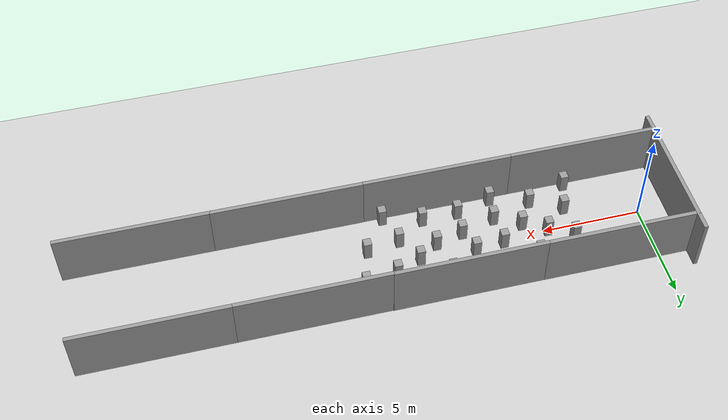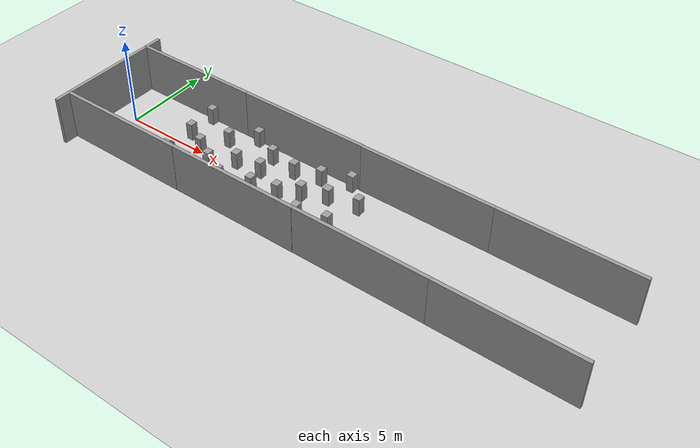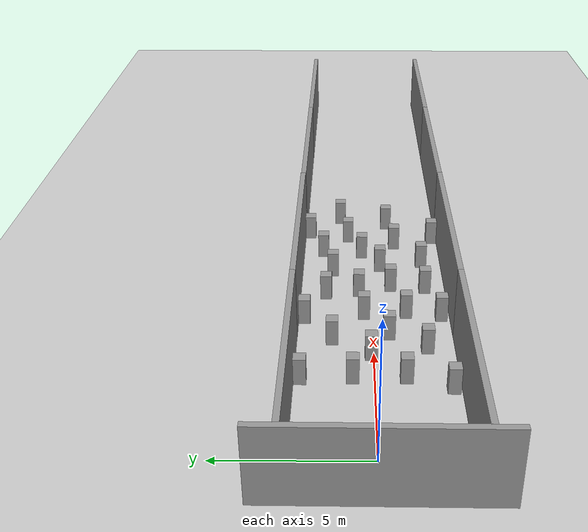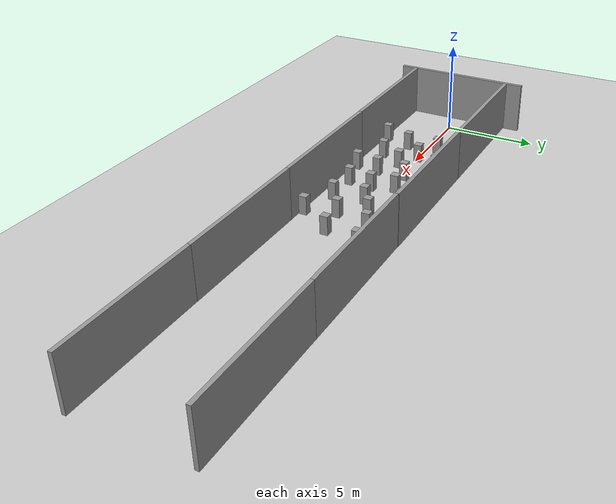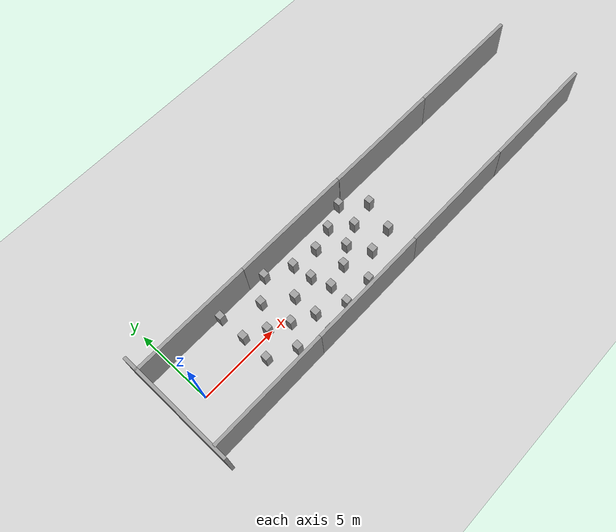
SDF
<sdf version="1.6">
 <world name="default">
  <plugin filename="gz-sim-physics-system" name="gz::sim::systems::Physics"/>
  <plugin filename="gz-sim-sensors-system" name="gz::sim::systems::Sensors">
   <render_engine>ogre2</render_engine>
  </plugin>
  <plugin filename="gz-sim-imu-system" name="gz::sim::systems::Imu"/>
  <plugin filename="gz-sim-scene-broadcaster-system" name="gz::sim::systems::SceneBroadcaster"/>
  <plugin filename="gz-sim-user-commands-system" name="gz::sim::systems::UserCommands"/>
  <light name="sun" type="directional">
   <pose>0 0 10 0 -0 0</pose>
   <diffuse>0.8 0.8 0.8 1</diffuse>
   <specular>0.2 0.2 0.2 1</specular>
   <attenuation>
    <range>1000</range>
    <constant>0.9</constant>
    <linear>0.01</linear>
    <quadratic>0.001</quadratic>
   </attenuation>
   <direction>-0.5 0.1 -0.9</direction>
  </light>
  <model name="ground_plane">
   <static>1</static>
   <link name="link">
    <collision name="collision">
     <geometry><plane><normal>0 0 1</normal><size>100 100</size></plane></geometry>
     <surface><friction><ode><mu>1000</mu><mu2>1000</mu2></ode></friction></surface>
    </collision>
    <visual name="visual">
     <cast_shadows>0</cast_shadows>
     <geometry><plane><normal>0 0 1</normal><size>100 100</size></plane></geometry>
     <material>
      <script><uri>file://media/materials/scripts/gazebo.material</uri><name>Gazebo/Grey</name></script>
     </material>
    </visual>
    <velocity_decay><linear>0</linear><angular>0</angular></velocity_decay>
   </link>
  </model>
  <physics name="default_physics" default="0" type="ode">
   <max_step_size>0.001</max_step_size>
   <real_time_factor>1</real_time_factor>
   <real_time_update_rate>1000</real_time_update_rate>
  </physics>
  <scene><ambient>0.4 0.4 0.4 1</ambient><background>0.7 0.7 0.7 1</background><shadows>1</shadows></scene>
  <spherical_coordinates>
   <surface_model>EARTH_WGS84</surface_model>
   <latitude_deg>0</latitude_deg>
   <longitude_deg>0</longitude_deg>
   <elevation>0</elevation>
   <heading_deg>0</heading_deg>
  </spherical_coordinates>
  <model name="grey_wall">
   <static>1</static>
   <link name="link">
    <pose>0 0 1.4 0 -0 0</pose>
    <collision name="collision"><geometry><box><size>7.5 0.2 2.8</size></box></geometry></collision>
    <visual name="visual">
     <cast_shadows>0</cast_shadows>
     <geometry><box><size>7.5 0.2 2.8</size></box></geometry>
     <material>
      <script>
       <uri>model://grey_wall/materials/scripts</uri>
       <uri>model://grey_wall/materials/textures</uri>
       <name>vrc/grey_wall</name>
      </script>
     </material>
    </visual>
    <velocity_decay><linear>0</linear><angular>0</angular></velocity_decay>
   </link>
   <pose>17.1032 2.73796 0 0 -0 0</pose>
  </model>
  <model name="grey_wall_0">
   <static>1</static>
   <link name="link">
    <pose>0 0 1.4 0 -0 0</pose>
    <collision name="collision"><geometry><box><size>7.5 0.2 2.8</size></box></geometry></collision>
    <visual name="visual">
     <cast_shadows>0</cast_shadows>
     <geometry><box><size>7.5 0.2 2.8</size></box></geometry>
     <material>
      <script>
       <uri>model://grey_wall/materials/scripts</uri>
       <uri>model://grey_wall/materials/textures</uri>
       <name>vrc/grey_wall</name>
      </script>
     </material>
    </visual>
    <velocity_decay><linear>0</linear><angular>0</angular></velocity_decay>
   </link>
   <pose>17.2246 -2.87669 0 0 -0 0</pose>
  </model>
  <model name="grey_wall_1">
   <static>1</static>
   <link name="link">
    <pose>0 0 1.4 0 -0 0</pose>
    <collision name="collision"><geometry><box><size>7.5 0.2 2.8</size></box></geometry></collision>
    <visual name="visual">
     <cast_shadows>0</cast_shadows>
     <geometry><box><size>7.5 0.2 2.8</size></box></geometry>
     <material>
      <script>
       <uri>model://grey_wall/materials/scripts</uri>
       <uri>model://grey_wall/materials/textures</uri>
       <name>vrc/grey_wall</name>
      </script>
     </material>
    </visual>
    <velocity_decay><linear>0</linear><angular>0</angular></velocity_decay>
   </link>
   <pose>-1.54458 -0.02055 0 0 0 -1.57546</pose>
  </model>
  <gravity>0 0 -9.8</gravity>
  <magnetic_field>6e-06 2.3e-05 -4.2e-05</magnetic_field>
  <atmosphere type="adiabatic"/>
  <model name="grey_wall_clone">
   <static>1</static>
   <link name="link">
    <pose>0 0 1.4 0 -0 0</pose>
    <collision name="collision"><geometry><box><size>7.5 0.2 2.8</size></box></geometry></collision>
    <visual name="visual">
     <cast_shadows>0</cast_shadows>
     <geometry><box><size>7.5 0.2 2.8</size></box></geometry>
     <material>
      <script>
       <uri>model://grey_wall/materials/scripts</uri>
       <uri>model://grey_wall/materials/textures</uri>
       <name>vrc/grey_wall</name>
      </script>
     </material>
    </visual>
    <velocity_decay><linear>0</linear><angular>0</angular></velocity_decay>
   </link>
   <pose>2.16529 2.76561 0 0 -0 0</pose>
  </model>
  <model name="grey_wall_clone_0">
   <static>1</static>
   <link name="link">
    <pose>0 0 1.4 0 -0 0</pose>
    <collision name="collision"><geometry><box><size>7.5 0.2 2.8</size></box></geometry></collision>
    <visual name="visual">
     <cast_shadows>0</cast_shadows>
     <geometry><box><size>7.5 0.2 2.8</size></box></geometry>
     <material>
      <script>
       <uri>model://grey_wall/materials/scripts</uri>
       <uri>model://grey_wall/materials/textures</uri>
       <name>vrc/grey_wall</name>
      </script>
     </material>
    </visual>
    <velocity_decay><linear>0</linear><angular>0</angular></velocity_decay>
   </link>
   <pose>2.23318 -2.88881 0 0 -0 0</pose>
  </model>
  <model name="grey_wall_clone_1">
   <static>1</static>
   <link name="link">
    <pose>0 0 1.4 0 -0 0</pose>
    <collision name="collision"><geometry><box><size>7.5 0.2 2.8</size></box></geometry></collision>
    <visual name="visual">
     <cast_shadows>0</cast_shadows>
     <geometry><box><size>7.5 0.2 2.8</size></box></geometry>
     <material>
      <script>
       <uri>model://grey_wall/materials/scripts</uri>
       <uri>model://grey_wall/materials/textures</uri>
       <name>vrc/grey_wall</name>
      </script>
     </material>
    </visual>
    <velocity_decay><linear>0</linear><angular>0</angular></velocity_decay>
   </link>
   <pose>9.72907 -2.8848 0 0 -0 0</pose>
  </model>
  <model name="grey_wall_clone_2">
   <static>1</static>
   <link name="link">
    <pose>0 0 1.4 0 -0 0</pose>
    <collision name="collision"><geometry><box><size>7.5 0.2 2.8</size></box></geometry></collision>
    <visual name="visual">
     <cast_shadows>0</cast_shadows>
     <geometry><box><size>7.5 0.2 2.8</size></box></geometry>
     <material>
      <script>
       <uri>model://grey_wall/materials/scripts</uri>
       <uri>model://grey_wall/materials/textures</uri>
       <name>vrc/grey_wall</name>
      </script>
     </material>
    </visual>
    <velocity_decay><linear>0</linear><angular>0</angular></velocity_decay>
   </link>
   <pose>9.64207 2.76067 0 0 -0 0</pose>
  </model>
  <model name="grey_wall_clone_3">
   <static>1</static>
   <link name="link">
    <pose>0 0 1.4 0 -0 0</pose>
    <collision name="collision"><geometry><box><size>7.5 0.2 2.8</size></box></geometry></collision>
    <visual name="visual">
     <cast_shadows>0</cast_shadows>
     <geometry><box><size>7.5 0.2 2.8</size></box></geometry>
     <material>
      <script>
       <uri>model://grey_wall/materials/scripts</uri>
       <uri>model://grey_wall/materials/textures</uri>
       <name>vrc/grey_wall</name>
      </script>
     </material>
    </visual>
    <velocity_decay><linear>0</linear><angular>0</angular></velocity_decay>
   </link>
   <pose>24.5861 2.73638 0 0 -0 0</pose>
  </model>
  <model name="grey_wall_clone_4">
   <static>1</static>
   <link name="link">
    <pose>0 0 1.4 0 -0 0</pose>
    <collision name="collision"><geometry><box><size>7.5 0.2 2.8</size></box></geometry></collision>
    <visual name="visual">
     <cast_shadows>0</cast_shadows>
     <geometry><box><size>7.5 0.2 2.8</size></box></geometry>
     <material>
      <script>
       <uri>model://grey_wall/materials/scripts</uri>
       <uri>model://grey_wall/materials/textures</uri>
       <name>vrc/grey_wall</name>
      </script>
     </material>
    </visual>
    <velocity_decay><linear>0</linear><angular>0</angular></velocity_decay>
   </link>
   <pose>24.6598 -2.88231 0 0 -0 0</pose>
  </model>
  <model name="unit_box_0">
   <pose>12.1377 -0.984623 0.5 -0 3e-06 -0.001107</pose>
   <link name="link">
    <inertial>
     <mass>1</mass>
     <inertia>
      <ixx>0.166667</ixx>
      <ixy>0</ixy>
      <ixz>0</ixz>
      <iyy>0.166667</iyy>
      <iyz>0</iyz>
      <izz>0.166667</izz>
     </inertia>
    </inertial>
    <collision name="collision"><geometry><box><size>0.392878 0.422643 1</size></box></geometry></collision>
    <visual name="visual">
     <geometry><box><size>0.392878 0.422643 1</size></box></geometry>
     <material>
      <script><name>Gazebo/Grey</name><uri>file://media/materials/scripts/gazebo.material</uri></script>
     </material>
    </visual>
   </link>
  </model>
  <model name="unit_box_0_clone">
   <pose>12.6731 0.892978 0.5 0 -2e-06 -0.000393</pose>
   <link name="link">
    <inertial>
     <mass>1</mass>
     <inertia>
      <ixx>0.166667</ixx>
      <ixy>0</ixy>
      <ixz>0</ixz>
      <iyy>0.166667</iyy>
      <iyz>0</iyz>
      <izz>0.166667</izz>
     </inertia>
    </inertial>
    <collision name="collision"><geometry><box><size>0.392878 0.422643 1</size></box></geometry></collision>
    <visual name="visual">
     <geometry><box><size>0.392878 0.422643 1</size></box></geometry>
     <material>
      <script><name>Gazebo/Grey</name><uri>file://media/materials/scripts/gazebo.material</uri></script>
     </material>
    </visual>
   </link>
  </model>
  <model name="unit_box_0_clone_1">
   <pose>4.81267 0.103596 0.5 0 0 -0.000684</pose>
   <link name="link">
    <inertial>
     <mass>1</mass>
     <inertia>
      <ixx>0.166667</ixx>
      <ixy>0</ixy>
      <ixz>0</ixz>
      <iyy>0.166667</iyy>
      <iyz>0</iyz>
      <izz>0.166667</izz>
     </inertia>
    </inertial>
    <collision name="collision"><geometry><box><size>0.392878 0.422643 1</size></box></geometry></collision>
    <visual name="visual">
     <geometry><box><size>0.392878 0.422643 1</size></box></geometry>
     <material>
      <script><name>Gazebo/Grey</name><uri>file://media/materials/scripts/gazebo.material</uri></script>
     </material>
    </visual>
   </link>
  </model>
  <model name="unit_box_0_clone_2">
   <pose>3.13793 -2.51628 0.5 0 0 -0.000183</pose>
   <link name="link">
    <inertial>
     <mass>1</mass>
     <inertia>
      <ixx>0.166667</ixx>
      <ixy>0</ixy>
      <ixz>0</ixz>
      <iyy>0.166667</iyy>
      <iyz>0</iyz>
      <izz>0.166667</izz>
     </inertia>
    </inertial>
    <collision name="collision"><geometry><box><size>0.392878 0.422643 1</size></box></geometry></collision>
    <visual name="visual">
     <geometry><box><size>0.392878 0.422643 1</size></box></geometry>
     <material>
      <script><name>Gazebo/Grey</name><uri>file://media/materials/scripts/gazebo.material</uri></script>
     </material>
    </visual>
   </link>
  </model>
  <model name="unit_box_0_clone_3">
   <pose>5.18508 -1.83299 0.499999 3e-06 4e-06 -0.000902</pose>
   <link name="link">
    <inertial>
     <mass>1</mass>
     <inertia>
      <ixx>0.166667</ixx>
      <ixy>0</ixy>
      <ixz>0</ixz>
      <iyy>0.166667</iyy>
      <iyz>0</iyz>
      <izz>0.166667</izz>
     </inertia>
    </inertial>
    <collision name="collision"><geometry><box><size>0.392878 0.422643 1</size></box></geometry></collision>
    <visual name="visual">
     <geometry><box><size>0.392878 0.422643 1</size></box></geometry>
     <material>
      <script><name>Gazebo/Grey</name><uri>file://media/materials/scripts/gazebo.material</uri></script>
     </material>
    </visual>
   </link>
  </model>
  <model name="unit_box_0_clone_5">
   <pose>5.64761 1.43914 0.499999 -2e-06 -4e-06 -0.000751</pose>
   <link name="link">
    <inertial>
     <mass>1</mass>
     <inertia>
      <ixx>0.166667</ixx>
      <ixy>0</ixy>
      <ixz>0</ixz>
      <iyy>0.166667</iyy>
      <iyz>0</iyz>
      <izz>0.166667</izz>
     </inertia>
    </inertial>
    <collision name="collision"><geometry><box><size>0.392878 0.422643 1</size></box></geometry></collision>
    <visual name="visual">
     <geometry><box><size>0.392878 0.422643 1</size></box></geometry>
     <material>
      <script><name>Gazebo/Grey</name><uri>file://media/materials/scripts/gazebo.material</uri></script>
     </material>
    </visual>
   </link>
  </model>
  <model name="unit_box_0_clone_5_clone">
   <pose>8.6246 0.478516 0.499999 -3e-06 4e-06 -0.000289</pose>
   <link name="link">
    <inertial>
     <mass>1</mass>
     <inertia>
      <ixx>0.166667</ixx>
      <ixy>0</ixy>
      <ixz>0</ixz>
      <iyy>0.166667</iyy>
      <iyz>0</iyz>
      <izz>0.166667</izz>
     </inertia>
    </inertial>
    <collision name="collision"><geometry><box><size>0.392878 0.422643 1</size></box></geometry></collision>
    <visual name="visual">
     <geometry><box><size>0.392878 0.422643 1</size></box></geometry>
     <material>
      <script><name>Gazebo/Grey</name><uri>file://media/materials/scripts/gazebo.material</uri></script>
     </material>
    </visual>
   </link>
  </model>
  <model name="unit_box_0_clone_5_clone_0">
   <pose>6.894 2.44935 0.5 0 -0 0</pose>
   <link name="link">
    <inertial>
     <mass>1</mass>
     <inertia>
      <ixx>0.166667</ixx>
      <ixy>0</ixy>
      <ixz>0</ixz>
      <iyy>0.166667</iyy>
      <iyz>0</iyz>
      <izz>0.166667</izz>
     </inertia>
    </inertial>
    <collision name="collision"><geometry><box><size>0.392878 0.422643 1</size></box></geometry></collision>
    <visual name="visual">
     <geometry><box><size>0.392878 0.422643 1</size></box></geometry>
     <material>
      <script><name>Gazebo/Grey</name><uri>file://media/materials/scripts/gazebo.material</uri></script>
     </material>
    </visual>
   </link>
  </model>
  <model name="unit_box_0_clone_5_clone_1">
   <pose>7.15955 0.314725 0.500001 -1e-06 -2e-06 -0.00036</pose>
   <link name="link">
    <inertial>
     <mass>1</mass>
     <inertia>
      <ixx>0.166667</ixx>
      <ixy>0</ixy>
      <ixz>0</ixz>
      <iyy>0.166667</iyy>
      <iyz>0</iyz>
      <izz>0.166667</izz>
     </inertia>
    </inertial>
    <collision name="collision"><geometry><box><size>0.392878 0.422643 1</size></box></geometry></collision>
    <visual name="visual">
     <geometry><box><size>0.392878 0.422643 1</size></box></geometry>
     <material>
      <script><name>Gazebo/Grey</name><uri>file://media/materials/scripts/gazebo.material</uri></script>
     </material>
    </visual>
   </link>
  </model>
  <model name="unit_box_0_clone_5_clone_2">
   <pose>8.99292 -0.721298 0.499999 -4e-06 3e-06 -0.000653</pose>
   <link name="link">
    <inertial>
     <mass>1</mass>
     <inertia>
      <ixx>0.166667</ixx>
      <ixy>0</ixy>
      <ixz>0</ixz>
      <iyy>0.166667</iyy>
      <iyz>0</iyz>
      <izz>0.166667</izz>
     </inertia>
    </inertial>
    <collision name="collision"><geometry><box><size>0.392878 0.422643 1</size></box></geometry></collision>
    <visual name="visual">
     <geometry><box><size>0.392878 0.422643 1</size></box></geometry>
     <material>
      <script><name>Gazebo/Grey</name><uri>file://media/materials/scripts/gazebo.material</uri></script>
     </material>
    </visual>
   </link>
  </model>
  <model name="unit_box_0_clone_5_clone_3">
   <pose>7.08037 -2.4764 0.499999 -3e-06 -3e-06 -0.000149</pose>
   <link name="link">
    <inertial>
     <mass>1</mass>
     <inertia>
      <ixx>0.166667</ixx>
      <ixy>0</ixy>
      <ixz>0</ixz>
      <iyy>0.166667</iyy>
      <iyz>0</iyz>
      <izz>0.166667</izz>
     </inertia>
    </inertial>
    <collision name="collision"><geometry><box><size>0.392878 0.422643 1</size></box></geometry></collision>
    <visual name="visual">
     <geometry><box><size>0.392878 0.422643 1</size></box></geometry>
     <material>
      <script><name>Gazebo/Grey</name><uri>file://media/materials/scripts/gazebo.material</uri></script>
     </material>
    </visual>
   </link>
  </model>
  <model name="unit_box_0_clone_5_clone_2_clone">
   <pose>3.5526 2.45429 0.5 0 0 -1e-06</pose>
   <link name="link">
    <inertial>
     <mass>1</mass>
     <inertia>
      <ixx>0.166667</ixx>
      <ixy>0</ixy>
      <ixz>0</ixz>
      <iyy>0.166667</iyy>
      <iyz>0</iyz>
      <izz>0.166667</izz>
     </inertia>
    </inertial>
    <collision name="collision"><geometry><box><size>0.392878 0.422643 1</size></box></geometry></collision>
    <visual name="visual">
     <geometry><box><size>0.392878 0.422643 1</size></box></geometry>
     <material>
      <script><name>Gazebo/Grey</name><uri>file://media/materials/scripts/gazebo.material</uri></script>
     </material>
    </visual>
   </link>
  </model>
  <model name="unit_box_0_clone_5_clone_2_clone_0">
   <pose>10.0633 1.47353 0.499999 -4e-06 -3e-06 -0.000921</pose>
   <link name="link">
    <inertial>
     <mass>1</mass>
     <inertia>
      <ixx>0.166667</ixx>
      <ixy>0</ixy>
      <ixz>0</ixz>
      <iyy>0.166667</iyy>
      <iyz>0</iyz>
      <izz>0.166667</izz>
     </inertia>
    </inertial>
    <collision name="collision"><geometry><box><size>0.392878 0.422643 1</size></box></geometry></collision>
    <visual name="visual">
     <geometry><box><size>0.392878 0.422643 1</size></box></geometry>
     <material>
      <script><name>Gazebo/Grey</name><uri>file://media/materials/scripts/gazebo.material</uri></script>
     </material>
    </visual>
   </link>
  </model>
  <model name="unit_box_0_clone_5_clone_2_clone_1">
   <pose>14.3021 1.22095 0.499999 4e-06 -2e-06 -0.000807</pose>
   <link name="link">
    <inertial>
     <mass>1</mass>
     <inertia>
      <ixx>0.166667</ixx>
      <ixy>0</ixy>
      <ixz>0</ixz>
      <iyy>0.166667</iyy>
      <iyz>0</iyz>
      <izz>0.166667</izz>
     </inertia>
    </inertial>
    <collision name="collision"><geometry><box><size>0.392878 0.422643 1</size></box></geometry></collision>
    <visual name="visual">
     <geometry><box><size>0.392878 0.422643 1</size></box></geometry>
     <material>
      <script><name>Gazebo/Grey</name><uri>file://media/materials/scripts/gazebo.material</uri></script>
     </material>
    </visual>
   </link>
  </model>
  <model name="unit_box_0_clone_5_clone_2_clone_2">
   <pose>13.009 2.44935 0.5 0 -0 0</pose>
   <link name="link">
    <inertial>
     <mass>1</mass>
     <inertia>
      <ixx>0.166667</ixx>
      <ixy>0</ixy>
      <ixz>0</ixz>
      <iyy>0.166667</iyy>
      <iyz>0</iyz>
      <izz>0.166667</izz>
     </inertia>
    </inertial>
    <collision name="collision"><geometry><box><size>0.392878 0.422643 1</size></box></geometry></collision>
    <visual name="visual">
     <geometry><box><size>0.392878 0.422643 1</size></box></geometry>
     <material>
      <script><name>Gazebo/Grey</name><uri>file://media/materials/scripts/gazebo.material</uri></script>
     </material>
    </visual>
   </link>
  </model>
  <model name="unit_box_0_clone_5_clone_2_clone_3">
   <pose>10.6945 -1.996 0.499999 -3e-06 -4e-06 -0.0005</pose>
   <link name="link">
    <inertial>
     <mass>1</mass>
     <inertia>
      <ixx>0.166667</ixx>
      <ixy>0</ixy>
      <ixz>0</ixz>
      <iyy>0.166667</iyy>
      <iyz>0</iyz>
      <izz>0.166667</izz>
     </inertia>
    </inertial>
    <collision name="collision"><geometry><box><size>0.392878 0.422643 1</size></box></geometry></collision>
    <visual name="visual">
     <geometry><box><size>0.392878 0.422643 1</size></box></geometry>
     <material>
      <script><name>Gazebo/Grey</name><uri>file://media/materials/scripts/gazebo.material</uri></script>
     </material>
    </visual>
   </link>
  </model>
  <model name="unit_box_0_clone_5_clone_2_clone_4">
   <pose>11.4058 0.343176 0.499999 5e-06 -2e-06 -0.000561</pose>
   <link name="link">
    <inertial>
     <mass>1</mass>
     <inertia>
      <ixx>0.166667</ixx>
      <ixy>0</ixy>
      <ixz>0</ixz>
      <iyy>0.166667</iyy>
      <iyz>0</iyz>
      <izz>0.166667</izz>
     </inertia>
    </inertial>
    <collision name="collision"><geometry><box><size>0.392878 0.422643 1</size></box></geometry></collision>
    <visual name="visual">
     <geometry><box><size>0.392878 0.422643 1</size></box></geometry>
     <material>
      <script><name>Gazebo/Grey</name><uri>file://media/materials/scripts/gazebo.material</uri></script>
     </material>
    </visual>
   </link>
  </model>
  <model name="unit_box_0_clone_5_clone_2_clone_5">
   <pose>12.6126 -2.55695 0.499999 -3e-06 -4e-06 -0.000664</pose>
   <link name="link">
    <inertial>
     <mass>1</mass>
     <inertia>
      <ixx>0.166667</ixx>
      <ixy>0</ixy>
      <ixz>0</ixz>
      <iyy>0.166667</iyy>
      <iyz>0</iyz>
      <izz>0.166667</izz>
     </inertia>
    </inertial>
    <collision name="collision"><geometry><box><size>0.392878 0.422643 1</size></box></geometry></collision>
    <visual name="visual">
     <geometry><box><size>0.392878 0.422643 1</size></box></geometry>
     <material>
      <script><name>Gazebo/Grey</name><uri>file://media/materials/scripts/gazebo.material</uri></script>
     </material>
    </visual>
   </link>
  </model>
  <model name="unit_box_0_clone_5_clone_2_clone_6">
   <pose>13.8068 -0.70851 0.499999 -4e-06 -3e-06 -0.000692</pose>
   <link name="link">
    <inertial>
     <mass>1</mass>
     <inertia>
      <ixx>0.166667</ixx>
      <ixy>0</ixy>
      <ixz>0</ixz>
      <iyy>0.166667</iyy>
      <iyz>0</iyz>
      <izz>0.166667</izz>
     </inertia>
    </inertial>
    <collision name="collision"><geometry><box><size>0.392878 0.422643 1</size></box></geometry></collision>
    <visual name="visual">
     <geometry><box><size>0.392878 0.422643 1</size></box></geometry>
     <material>
      <script><name>Gazebo/Grey</name><uri>file://media/materials/scripts/gazebo.material</uri></script>
     </material>
    </visual>
   </link>
  </model>
  <model name="unit_box_0_clone_3_clone">
   <pose>3.60452 0.732963 0.499999 3e-06 -4e-06 -0.00086</pose>
   <link name="link">
    <inertial>
     <mass>1</mass>
     <inertia>
      <ixx>0.166667</ixx>
      <ixy>0</ixy>
      <ixz>0</ixz>
      <iyy>0.166667</iyy>
      <iyz>0</iyz>
      <izz>0.166667</izz>
     </inertia>
    </inertial>
    <collision name="collision"><geometry><box><size>0.392878 0.422643 1</size></box></geometry></collision>
    <visual name="visual">
     <geometry><box><size>0.392878 0.422643 1</size></box></geometry>
     <material>
      <script><name>Gazebo/Grey</name><uri>file://media/materials/scripts/gazebo.material</uri></script>
     </material>
    </visual>
   </link>
  </model>
  <model name="unit_box_0_clone_3_clone_0">
   <pose>7.23497 -1.21039 0.499999 -3e-06 -4e-06 -0.000959</pose>
   <link name="link">
    <inertial>
     <mass>1</mass>
     <inertia>
      <ixx>0.166667</ixx>
      <ixy>0</ixy>
      <ixz>0</ixz>
      <iyy>0.166667</iyy>
      <iyz>0</iyz>
      <izz>0.166667</izz>
     </inertia>
    </inertial>
    <collision name="collision"><geometry><box><size>0.392878 0.422643 1</size></box></geometry></collision>
    <visual name="visual">
     <geometry><box><size>0.392878 0.422643 1</size></box></geometry>
     <material>
      <script><name>Gazebo/Grey</name><uri>file://media/materials/scripts/gazebo.material</uri></script>
     </material>
    </visual>
   </link>
  </model>
  <model name="unit_box_0_clone_3_clone_1">
   <pose>11.4956 1.8769 0.500001 0 2e-06 -0.000736</pose>
   <link name="link">
    <inertial>
     <mass>1</mass>
     <inertia>
      <ixx>0.166667</ixx>
      <ixy>0</ixy>
      <ixz>0</ixz>
      <iyy>0.166667</iyy>
      <iyz>0</iyz>
      <izz>0.166667</izz>
     </inertia>
    </inertial>
    <collision name="collision"><geometry><box><size>0.392878 0.422643 1</size></box></geometry></collision>
    <visual name="visual">
     <geometry><box><size>0.392878 0.422643 1</size></box></geometry>
     <material>
      <script><name>Gazebo/Grey</name><uri>file://media/materials/scripts/gazebo.material</uri></script>
     </material>
    </visual>
   </link>
  </model>
  <model name="unit_box_0_clone_3_clone_2">
   <pose>8.45247 1.70718 0.499999 -3e-06 3e-06 -0.001049</pose>
   <link name="link">
    <inertial>
     <mass>1</mass>
     <inertia>
      <ixx>0.166667</ixx>
      <ixy>0</ixy>
      <ixz>0</ixz>
      <iyy>0.166667</iyy>
      <iyz>0</iyz>
      <izz>0.166667</izz>
     </inertia>
    </inertial>
    <collision name="collision"><geometry><box><size>0.392878 0.422643 1</size></box></geometry></collision>
    <visual name="visual">
     <geometry><box><size>0.392878 0.422643 1</size></box></geometry>
     <material>
      <script><name>Gazebo/Grey</name><uri>file://media/materials/scripts/gazebo.material</uri></script>
     </material>
    </visual>
   </link>
  </model>
  <model name="unit_box_0_clone_3_clone_3">
   <pose>8.87398 -2.01335 0.499999 3e-06 -4e-06 -0.00095</pose>
   <link name="link">
    <inertial>
     <mass>1</mass>
     <inertia>
      <ixx>0.166667</ixx>
      <ixy>0</ixy>
      <ixz>0</ixz>
      <iyy>0.166667</iyy>
      <iyz>0</iyz>
      <izz>0.166667</izz>
     </inertia>
    </inertial>
    <collision name="collision"><geometry><box><size>0.392878 0.422643 1</size></box></geometry></collision>
    <visual name="visual">
     <geometry><box><size>0.392878 0.422643 1</size></box></geometry>
     <material>
      <script><name>Gazebo/Grey</name><uri>file://media/materials/scripts/gazebo.material</uri></script>
     </material>
    </visual>
   </link>
  </model>
  <model name="unit_box_0_clone_3_clone_4">
   <pose>3.62381 -1.02676 0.499999 -3e-06 4e-06 -0.001077</pose>
   <link name="link">
    <inertial>
     <mass>1</mass>
     <inertia>
      <ixx>0.166667</ixx>
      <ixy>0</ixy>
      <ixz>0</ixz>
      <iyy>0.166667</iyy>
      <iyz>0</iyz>
      <izz>0.166667</izz>
     </inertia>
    </inertial>
    <collision name="collision"><geometry><box><size>0.392878 0.422643 1</size></box></geometry></collision>
    <visual name="visual">
     <geometry><box><size>0.392878 0.422643 1</size></box></geometry>
     <material>
      <script><name>Gazebo/Grey</name><uri>file://media/materials/scripts/gazebo.material</uri></script>
     </material>
    </visual>
   </link>
  </model>
  <model name="unit_box_0_clone_3_clone_5">
   <pose>5.9596 -0.547044 0.499999 3e-06 4e-06 -0.001031</pose>
   <link name="link">
    <inertial>
     <mass>1</mass>
     <inertia>
      <ixx>0.166667</ixx>
      <ixy>0</ixy>
      <ixz>0</ixz>
      <iyy>0.166667</iyy>
      <iyz>0</iyz>
      <izz>0.166667</izz>
     </inertia>
    </inertial>
    <collision name="collision"><geometry><box><size>0.392878 0.422643 1</size></box></geometry></collision>
    <visual name="visual">
     <geometry><box><size>0.392878 0.422643 1</size></box></geometry>
     <material>
      <script><name>Gazebo/Grey</name><uri>file://media/materials/scripts/gazebo.material</uri></script>
     </material>
    </visual>
   </link>
  </model>
  <model name="unit_box_0_clone_5_clone_2_clone_4_clone">
   <pose>10.4025 -0.358107 0.499999 3e-06 -4e-06 -0.000734</pose>
   <link name="link">
    <inertial>
     <mass>1</mass>
     <inertia>
      <ixx>0.166667</ixx>
      <ixy>0</ixy>
      <ixz>0</ixz>
      <iyy>0.166667</iyy>
      <iyz>0</iyz>
      <izz>0.166667</izz>
     </inertia>
    </inertial>
    <collision name="collision"><geometry><box><size>0.392878 0.422643 1</size></box></geometry></collision>
    <visual name="visual">
     <geometry><box><size>0.392878 0.422643 1</size></box></geometry>
     <material>
      <script><name>Gazebo/Grey</name><uri>file://media/materials/scripts/gazebo.material</uri></script>
     </material>
    </visual>
   </link>
  </model>
 </world>
</sdf>
